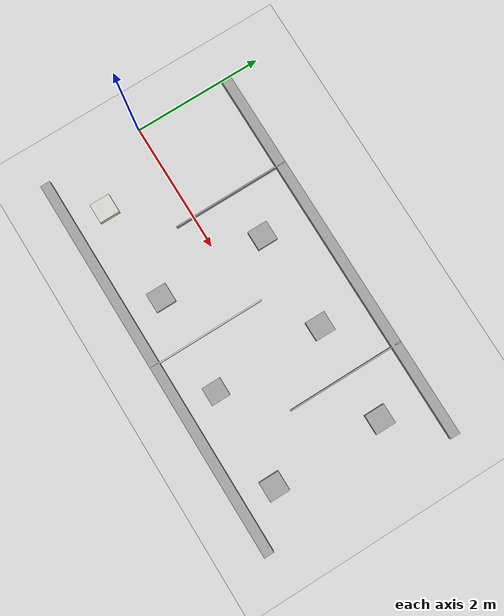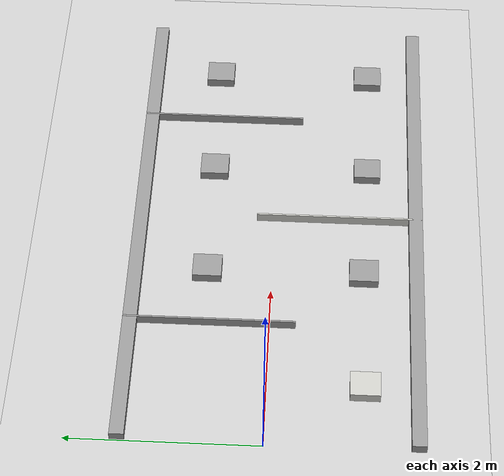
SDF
<sdf version="1.7">
 <world name="default">
  <light name="sun" type="directional">
   <pose>0 0 10 0 -0 0</pose>
   <diffuse>0.8 0.8 0.8 1</diffuse>
   <specular>0.2 0.2 0.2 1</specular>
   <attenuation>
    <range>1000</range>
    <constant>0.9</constant>
    <linear>0.01</linear>
    <quadratic>0.001</quadratic>
   </attenuation>
   <direction>-0.5 0.1 -0.9</direction>
   <spot><inner_angle>0</inner_angle><outer_angle>0</outer_angle><falloff>0</falloff></spot>
  </light>
  <model name="ground_plane">
   <static>1</static>
   <link name="link">
    <collision name="collision">
     <geometry><plane><normal>0 0 1</normal><size>100 100</size></plane></geometry>
     <surface>
      <contact><collide_bitmask>65535</collide_bitmask></contact>
      <friction><ode><mu>100</mu><mu2>50</mu2></ode></friction>
     </surface>
    </collision>
    <visual name="visual">
     <cast_shadows>0</cast_shadows>
     <geometry><plane><normal>0 0 1</normal><size>100 100</size></plane></geometry>
     <material>
      <script><uri>file://media/materials/scripts/gazebo.material</uri><name>Gazebo/Grey</name></script>
     </material>
    </visual>
   </link>
  </model>
  <gravity>0 0 -9.8</gravity>
  <magnetic_field>6e-06 2.3e-05 -4.2e-05</magnetic_field>
  <atmosphere type="adiabatic"/>
  <physics type="ode">
   <max_step_size>0.001</max_step_size>
   <real_time_factor>1</real_time_factor>
   <real_time_update_rate>1000</real_time_update_rate>
  </physics>
  <scene><ambient>0.4 0.4 0.4 1</ambient><background>0.7 0.7 0.7 1</background><shadows>1</shadows></scene>
  <audio><device>default</device></audio>
  <spherical_coordinates>
   <surface_model>EARTH_WGS84</surface_model>
   <latitude_deg>0</latitude_deg>
   <longitude_deg>0</longitude_deg>
   <elevation>0</elevation>
   <heading_deg>0</heading_deg>
  </spherical_coordinates>
  <model name="Final_Compi">
   <pose>3.00514 -0.042173 0 0 -0 0</pose>
   <link name="Wall_0">
    <collision name="Wall_0_Collision">
     <geometry><box><size>6 0.15 0.1</size></box></geometry>
     <pose>0 0 0.05 0 -0 0</pose>
    </collision>
    <visual name="Wall_0_Visual">
     <pose>0 0 0.05 0 -0 0</pose>
     <geometry><box><size>6 0.15 0.1</size></box></geometry>
     <material>
      <script><uri>file://media/materials/scripts/gazebo.material</uri><name>Gazebo/Grey</name></script>
      <ambient>1 1 1 1</ambient>
     </material>
     <meta><layer>0</layer></meta>
    </visual>
    <pose>0.002 1.4975 0 0 -0 0</pose>
   </link>
   <link name="Wall_12">
    <collision name="Wall_12_Collision">
     <geometry><box><size>1.8 0.02 0.1</size></box></geometry>
     <pose>0 0 0.05 0 -0 0</pose>
    </collision>
    <visual name="Wall_12_Visual">
     <pose>0 0 0.05 0 -0 0</pose>
     <geometry><box><size>1.8 0.02 0.1</size></box></geometry>
     <material>
      <script><uri>file://media/materials/scripts/gazebo.material</uri><name>Gazebo/Grey</name></script>
      <ambient>1 1 1 1</ambient>
     </material>
     <meta><layer>0</layer></meta>
    </visual>
    <pose>1.52807 0.670482 0 0 -0 1.5708</pose>
   </link>
   <link name="Wall_14">
    <collision name="Wall_14_Collision">
     <geometry><box><size>0.31 0.3 0.1</size></box></geometry>
     <pose>0 0 0.05 0 -0 0</pose>
    </collision>
    <visual name="Wall_14_Visual">
     <pose>0 0 0.05 0 -0 0</pose>
     <geometry><box><size>0.31 0.3 0.1</size></box></geometry>
     <material>
      <script><uri>file://media/materials/scripts/gazebo.material</uri><name>Gazebo/CeilingTiled</name></script>
      <ambient>1 1 1 1</ambient>
     </material>
     <meta><layer>0</layer></meta>
    </visual>
    <pose>-2.252 -0.9605 0 0 -0 -1.5708</pose>
   </link>
   <link name="Wall_16">
    <collision name="Wall_16_Collision">
     <geometry><box><size>0.31 0.3 0.1</size></box></geometry>
     <pose>0 0 0.05 0 -0 0</pose>
    </collision>
    <visual name="Wall_16_Visual">
     <pose>0 0 0.05 0 -0 0</pose>
     <geometry><box><size>0.31 0.3 0.1</size></box></geometry>
     <material>
      <script><uri>file://media/materials/scripts/gazebo.material</uri><name>Gazebo/Grey</name></script>
      <ambient>1 1 1 1</ambient>
     </material>
     <meta><layer>0</layer></meta>
    </visual>
    <pose>-0.745011 -0.937556 0 0 -0 -1.5708</pose>
   </link>
   <link name="Wall_18">
    <collision name="Wall_18_Collision">
     <geometry><box><size>0.31 0.3 0.1</size></box></geometry>
     <pose>0 0 0.05 0 -0 0</pose>
    </collision>
    <visual name="Wall_18_Visual">
     <pose>0 0 0.05 0 -0 0</pose>
     <geometry><box><size>0.31 0.3 0.1</size></box></geometry>
     <material>
      <script><uri>file://media/materials/scripts/gazebo.material</uri><name>Gazebo/Grey</name></script>
      <ambient>1 1 1 1</ambient>
     </material>
     <meta><layer>0</layer></meta>
    </visual>
    <pose>-0.746577 0.731748 0 0 -0 -1.5708</pose>
   </link>
   <link name="Wall_2">
    <collision name="Wall_2_Collision">
     <geometry><box><size>6 0.15 0.1</size></box></geometry>
     <pose>0 0 0.05 0 -0 0</pose>
    </collision>
    <visual name="Wall_2_Visual">
     <pose>0 0 0.05 0 -0 0</pose>
     <geometry><box><size>6 0.15 0.1</size></box></geometry>
     <material>
      <script><uri>file://media/materials/scripts/gazebo.material</uri><name>Gazebo/Grey</name></script>
      <ambient>1 1 1 1</ambient>
     </material>
     <meta><layer>0</layer></meta>
    </visual>
    <pose>-0.002 -1.4975 0 0 -0 0</pose>
   </link>
   <link name="Wall_21">
    <collision name="Wall_21_Collision">
     <geometry><box><size>0.31 0.3 0.1</size></box></geometry>
     <pose>0 0 0.05 0 -0 0</pose>
    </collision>
    <visual name="Wall_21_Visual">
     <pose>0 0 0.05 0 -0 0</pose>
     <geometry><box><size>0.31 0.3 0.1</size></box></geometry>
     <material>
      <script><uri>file://media/materials/scripts/gazebo.material</uri><name>Gazebo/Grey</name></script>
      <ambient>1 1 1 1</ambient>
     </material>
     <meta><layer>0</layer></meta>
    </visual>
    <pose>0.761 0.7375 0 0 -0 -1.5708</pose>
   </link>
   <link name="Wall_23">
    <collision name="Wall_23_Collision">
     <geometry><box><size>0.29 0.28 0.1</size></box></geometry>
     <pose>0 0 0.05 0 -0 0</pose>
    </collision>
    <visual name="Wall_23_Visual">
     <pose>0 0 0.05 0 -0 0</pose>
     <geometry><box><size>0.29 0.28 0.1</size></box></geometry>
     <material>
      <script><uri>file://media/materials/scripts/gazebo.material</uri><name>Gazebo/Grey</name></script>
      <ambient>1 1 1 1</ambient>
     </material>
     <meta><layer>0</layer></meta>
    </visual>
    <pose>0.765843 -0.965713 0 0 -0 -1.5708</pose>
   </link>
   <link name="Wall_25">
    <collision name="Wall_25_Collision">
     <geometry><box><size>0.31 0.3 0.1</size></box></geometry>
     <pose>0 0 0.05 0 -0 0</pose>
    </collision>
    <visual name="Wall_25_Visual">
     <pose>0 0 0.05 0 -0 0</pose>
     <geometry><box><size>0.31 0.3 0.1</size></box></geometry>
     <material>
      <script><uri>file://media/materials/scripts/gazebo.material</uri><name>Gazebo/Grey</name></script>
      <ambient>1 1 1 1</ambient>
     </material>
     <meta><layer>0</layer></meta>
    </visual>
    <pose>2.27 0.748982 0 0 -0 -1.5708</pose>
   </link>
   <link name="Wall_29">
    <collision name="Wall_29_Collision">
     <geometry><box><size>0.31 0.3 0.1</size></box></geometry>
     <pose>0 0 0.05 0 -0 0</pose>
    </collision>
    <visual name="Wall_29_Visual">
     <pose>0 0 0.05 0 -0 0</pose>
     <geometry><box><size>0.31 0.3 0.1</size></box></geometry>
     <material>
      <script><uri>file://media/materials/scripts/gazebo.material</uri><name>Gazebo/Grey</name></script>
      <ambient>1 1 1 1</ambient>
     </material>
     <meta><layer>0</layer></meta>
    </visual>
    <pose>2.26996 -0.96056 0 0 -0 -1.5708</pose>
   </link>
   <link name="Wall_6">
    <collision name="Wall_6_Collision">
     <geometry><box><size>1.8 0.02 0.1</size></box></geometry>
     <pose>0 0 0.05 0 -0 0</pose>
    </collision>
    <visual name="Wall_6_Visual">
     <pose>0 0 0.05 0 -0 0</pose>
     <geometry><box><size>1.8 0.02 0.1</size></box></geometry>
     <material>
      <script><uri>file://media/materials/scripts/gazebo.material</uri><name>Gazebo/Grey</name></script>
      <ambient>1 1 1 1</ambient>
     </material>
     <meta><layer>0</layer></meta>
    </visual>
    <pose>-1.48554 0.668713 0 0 -0 1.5708</pose>
   </link>
   <link name="Wall_9">
    <collision name="Wall_9_Collision">
     <geometry><box><size>1.8 0.02 0.1</size></box></geometry>
     <pose>0 0 0.05 0 -0 0</pose>
    </collision>
    <visual name="Wall_9_Visual">
     <pose>0 0 0.05 0 -0 0</pose>
     <geometry><box><size>1.8 0.02 0.1</size></box></geometry>
     <material>
      <script><uri>file://media/materials/scripts/gazebo.material</uri><name>Gazebo/CeilingTiled</name></script>
      <ambient>1 1 1 1</ambient>
     </material>
     <meta><layer>0</layer></meta>
    </visual>
    <pose>0.017519 -0.666372 0 0 -0 -1.5708</pose>
   </link>
   <static>1</static>
  </model>
 </world>
</sdf>
